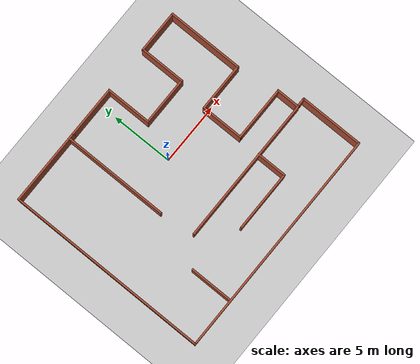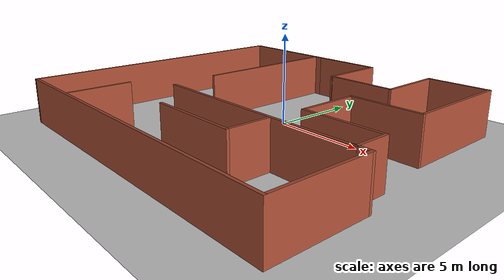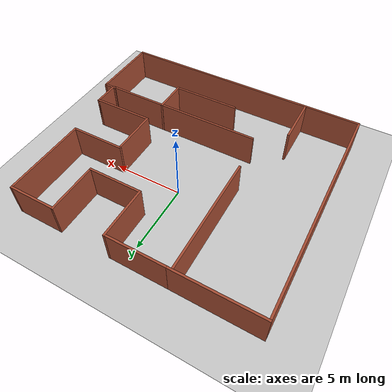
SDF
<sdf version="1.6">
 <world name="default">
  <light name="sun" type="directional">
   <pose>0 0 10 0 -0 0</pose>
   <diffuse>0.8 0.8 0.8 1</diffuse>
   <specular>0.2 0.2 0.2 1</specular>
   <attenuation>
    <range>1000</range>
    <constant>0.9</constant>
    <linear>0.01</linear>
    <quadratic>0.001</quadratic>
   </attenuation>
   <direction>-0.5 0.1 -0.9</direction>
  </light>
  <model name="ground_plane">
   <static>1</static>
   <link name="link">
    <collision name="collision">
     <geometry><plane><normal>0 0 1</normal><size>100 100</size></plane></geometry>
     <surface>
      <contact><collide_bitmask>65535</collide_bitmask></contact>
      <friction><ode><mu>100</mu><mu2>50</mu2></ode></friction>
     </surface>
    </collision>
    <visual name="visual">
     <cast_shadows>0</cast_shadows>
     <geometry><plane><normal>0 0 1</normal><size>100 100</size></plane></geometry>
     <material>
      <script><uri>file://media/materials/scripts/gazebo.material</uri><name>Gazebo/Grey</name></script>
     </material>
    </visual>
   </link>
  </model>
  <gravity>0 0 -9.8</gravity>
  <magnetic_field>6e-06 2.3e-05 -4.2e-05</magnetic_field>
  <atmosphere type="adiabatic"/>
  <physics name="default_physics" default="0" type="ode">
   <max_step_size>0.001</max_step_size>
   <real_time_factor>1</real_time_factor>
   <real_time_update_rate>1000</real_time_update_rate>
  </physics>
  <scene><ambient>0.4 0.4 0.4 1</ambient><background>0.7 0.7 0.7 1</background><shadows>1</shadows></scene>
  <spherical_coordinates>
   <surface_model>EARTH_WGS84</surface_model>
   <latitude_deg>0</latitude_deg>
   <longitude_deg>0</longitude_deg>
   <elevation>0</elevation>
   <heading_deg>0</heading_deg>
  </spherical_coordinates>
  <model name="sampleroom">
   <pose>0.148798 -1.84125 0 0 -0 0</pose>
   <link name="Wall_1">
    <collision name="Wall_1_Collision">
     <geometry><box><size>4.25 0.15 2.5</size></box></geometry>
     <pose>0 0 1.25 0 -0 0</pose>
    </collision>
    <visual name="Wall_1_Visual">
     <pose>0 0 1.25 0 -0 0</pose>
     <geometry><box><size>4.25 0.15 2.5</size></box></geometry>
     <material>
      <script><uri>file://media/materials/scripts/gazebo.material</uri><name>Gazebo/Bricks</name></script>
      <ambient>1 1 1 1</ambient>
     </material>
     <meta><layer>0</layer></meta>
    </visual>
    <pose>-1.15 8.175 0 0 -0 0</pose>
   </link>
   <link name="Wall_10">
    <collision name="Wall_10_Collision">
     <geometry><box><size>2 0.15 2.5</size></box></geometry>
     <pose>0 0 1.25 0 -0 0</pose>
    </collision>
    <visual name="Wall_10_Visual">
     <pose>0 0 1.25 0 -0 0</pose>
     <geometry><box><size>2 0.15 2.5</size></box></geometry>
     <material>
      <script><uri>file://media/materials/scripts/gazebo.material</uri><name>Gazebo/Bricks</name></script>
      <ambient>1 1 1 1</ambient>
     </material>
     <meta><layer>0</layer></meta>
    </visual>
    <pose>8.6 -2.2 0 0 -0 -1.5708</pose>
   </link>
   <link name="Wall_11">
    <collision name="Wall_11_Collision">
     <geometry><box><size>12 0.15 2.5</size></box></geometry>
     <pose>0 0 1.25 0 -0 0</pose>
    </collision>
    <visual name="Wall_11_Visual">
     <pose>0 0 1.25 0 -0 0</pose>
     <geometry><box><size>12 0.15 2.5</size></box></geometry>
     <material>
      <script><uri>file://media/materials/scripts/gazebo.material</uri><name>Gazebo/Bricks</name></script>
      <ambient>1 1 1 1</ambient>
     </material>
     <meta><layer>0</layer></meta>
    </visual>
    <pose>2.675 -3.125 0 0 -0 3.14159</pose>
   </link>
   <link name="Wall_2">
    <collision name="Wall_2_Collision">
     <geometry><box><size>3.75 0.15 2.5</size></box></geometry>
     <pose>0 0 1.25 0 -0 0</pose>
    </collision>
    <visual name="Wall_2_Visual">
     <pose>0 0 1.25 0 -0 0</pose>
     <geometry><box><size>3.75 0.15 2.5</size></box></geometry>
     <material>
      <script><uri>file://media/materials/scripts/gazebo.material</uri><name>Gazebo/Bricks</name></script>
      <ambient>1 1 1 1</ambient>
     </material>
     <meta><layer>0</layer></meta>
    </visual>
    <pose>0.9 6.375 0 0 -0 -1.5708</pose>
   </link>
   <link name="Wall_20">
    <collision name="Wall_20_Collision">
     <geometry><box><size>6.25 0.15 2.5</size></box></geometry>
     <pose>0 0 1.25 0 -0 0</pose>
    </collision>
    <visual name="Wall_20_Visual">
     <pose>0 0 1.25 0 -0 0</pose>
     <geometry><box><size>6.25 0.15 2.5</size></box></geometry>
     <material>
      <script><uri>file://media/materials/scripts/gazebo.material</uri><name>Gazebo/Bricks</name></script>
      <ambient>1 1 1 1</ambient>
     </material>
     <meta><layer>0</layer></meta>
    </visual>
    <pose>-6.25 8.175 0 0 -0 3.14159</pose>
   </link>
   <link name="Wall_21">
    <collision name="Wall_21_Collision">
     <geometry><box><size>16.5 0.15 2.5</size></box></geometry>
     <pose>0 0 1.25 0 -0 0</pose>
    </collision>
    <visual name="Wall_21_Visual">
     <pose>0 0 1.25 0 -0 0</pose>
     <geometry><box><size>16.5 0.15 2.5</size></box></geometry>
     <material>
      <script><uri>file://media/materials/scripts/gazebo.material</uri><name>Gazebo/Bricks</name></script>
      <ambient>1 1 1 1</ambient>
     </material>
     <meta><layer>0</layer></meta>
    </visual>
    <pose>-9.3 0 0 0 -0 -1.5708</pose>
   </link>
   <link name="Wall_22">
    <collision name="Wall_22_Collision">
     <geometry><box><size>18.75 0.15 2.5</size></box></geometry>
     <pose>0 0 1.25 0 -0 0</pose>
    </collision>
    <visual name="Wall_22_Visual">
     <pose>0 0 1.25 0 -0 0</pose>
     <geometry><box><size>18.75 0.15 2.5</size></box></geometry>
     <material>
      <script><uri>file://media/materials/scripts/gazebo.material</uri><name>Gazebo/Bricks</name></script>
      <ambient>1 1 1 1</ambient>
     </material>
     <meta><layer>0</layer></meta>
    </visual>
    <pose>0 -8.175 0 0 -0 0</pose>
   </link>
   <link name="Wall_23">
    <collision name="Wall_23_Collision">
     <geometry><box><size>5.25 0.15 2.5</size></box></geometry>
     <pose>0 0 1.25 0 -0 0</pose>
    </collision>
    <visual name="Wall_23_Visual">
     <pose>0 0 1.25 0 -0 0</pose>
     <geometry><box><size>5.25 0.15 2.5</size></box></geometry>
     <material>
      <script><uri>file://media/materials/scripts/gazebo.material</uri><name>Gazebo/Bricks</name></script>
      <ambient>1 1 1 1</ambient>
     </material>
     <meta><layer>0</layer></meta>
    </visual>
    <pose>9.3 -5.625 0 0 -0 1.5708</pose>
   </link>
   <link name="Wall_24">
    <collision name="Wall_24_Collision">
     <geometry><box><size>1 0.15 2.5</size></box></geometry>
     <pose>0 0 1.25 0 -0 0</pose>
    </collision>
    <visual name="Wall_24_Visual">
     <pose>0 0 1.25 0 -0 0</pose>
     <geometry><box><size>1 0.15 2.5</size></box></geometry>
     <material>
      <script><uri>file://media/materials/scripts/gazebo.material</uri><name>Gazebo/Bricks</name></script>
      <ambient>1 1 1 1</ambient>
     </material>
     <meta><layer>0</layer></meta>
    </visual>
    <pose>8.875 -3.075 0 0 -0 3.14159</pose>
   </link>
   <link name="Wall_26">
    <collision name="Wall_26_Collision">
     <geometry><box><size>8.5 0.15 2.5</size></box></geometry>
     <pose>0 0 1.25 0 -0 0</pose>
    </collision>
    <visual name="Wall_26_Visual">
     <pose>0 0 1.25 0 -0 0</pose>
     <geometry><box><size>8.5 0.15 2.5</size></box></geometry>
     <material>
      <script><uri>file://media/materials/scripts/gazebo.material</uri><name>Gazebo/Bricks</name></script>
      <ambient>1 1 1 1</ambient>
     </material>
     <meta><layer>0</layer></meta>
    </visual>
    <pose>-3.60586 3.87439 0 0 -0 -1.5708</pose>
   </link>
   <link name="Wall_28">
    <collision name="Wall_28_Collision">
     <geometry><box><size>3.5 0.15 2.5</size></box></geometry>
     <pose>0 0 1.25 0 -0 0</pose>
    </collision>
    <visual name="Wall_28_Visual">
     <pose>0 0 1.25 0 -0 0</pose>
     <geometry><box><size>3.5 0.15 2.5</size></box></geometry>
     <material>
      <script><uri>file://media/materials/scripts/gazebo.material</uri><name>Gazebo/Bricks</name></script>
      <ambient>1 1 1 1</ambient>
     </material>
     <meta><layer>0</layer></meta>
    </visual>
    <pose>-5.305 -6.37693 0 0 -0 1.5708</pose>
   </link>
   <link name="Wall_3">
    <collision name="Wall_3_Collision">
     <geometry><box><size>4 0.15 2.5</size></box></geometry>
     <pose>0 0 1.25 0 -0 0</pose>
    </collision>
    <visual name="Wall_3_Visual">
     <pose>0 0 1.25 0 -0 0</pose>
     <geometry><box><size>4 0.15 2.5</size></box></geometry>
     <material>
      <script><uri>file://media/materials/scripts/gazebo.material</uri><name>Gazebo/Bricks</name></script>
      <ambient>1 1 1 1</ambient>
     </material>
     <meta><layer>0</layer></meta>
    </visual>
    <pose>2.825 4.575 0 0 -0 0</pose>
   </link>
   <link name="Wall_30">
    <collision name="Wall_30_Collision">
     <geometry><box><size>2.5 0.15 2.5</size></box></geometry>
     <pose>0 0 1.25 0 -0 0</pose>
    </collision>
    <visual name="Wall_30_Visual">
     <pose>0 0 1.25 0 -0 0</pose>
     <geometry><box><size>2.5 0.15 2.5</size></box></geometry>
     <material>
      <script><uri>file://media/materials/scripts/gazebo.material</uri><name>Gazebo/Bricks</name></script>
      <ambient>1 1 1 1</ambient>
     </material>
     <meta><layer>0</layer></meta>
    </visual>
    <pose>4.12115 -4.29135 0 0 -0 -1.5708</pose>
   </link>
   <link name="Wall_31">
    <collision name="Wall_31_Collision">
     <geometry><box><size>5 0.15 2.5</size></box></geometry>
     <pose>0 0 1.25 0 -0 0</pose>
    </collision>
    <visual name="Wall_31_Visual">
     <pose>0 0 1.25 0 -0 0</pose>
     <geometry><box><size>5 0.15 2.5</size></box></geometry>
     <material>
      <script><uri>file://media/materials/scripts/gazebo.material</uri><name>Gazebo/Bricks</name></script>
      <ambient>1 1 1 1</ambient>
     </material>
     <meta><layer>0</layer></meta>
    </visual>
    <pose>1.69615 -5.46635 0 0 -0 3.14159</pose>
   </link>
   <link name="Wall_4">
    <collision name="Wall_4_Collision">
     <geometry><box><size>3.75 0.15 2.5</size></box></geometry>
     <pose>0 0 1.25 0 -0 0</pose>
    </collision>
    <visual name="Wall_4_Visual">
     <pose>0 0 1.25 0 -0 0</pose>
     <geometry><box><size>3.75 0.15 2.5</size></box></geometry>
     <material>
      <script><uri>file://media/materials/scripts/gazebo.material</uri><name>Gazebo/Bricks</name></script>
      <ambient>1 1 1 1</ambient>
     </material>
     <meta><layer>0</layer></meta>
    </visual>
    <pose>4.75 6.375 0 0 -0 1.5708</pose>
   </link>
   <link name="Wall_5">
    <collision name="Wall_5_Collision">
     <geometry><box><size>3.5 0.15 2.5</size></box></geometry>
     <pose>0 0 1.25 0 -0 0</pose>
    </collision>
    <visual name="Wall_5_Visual">
     <pose>0 0 1.25 0 -0 0</pose>
     <geometry><box><size>3.5 0.15 2.5</size></box></geometry>
     <material>
      <script><uri>file://media/materials/scripts/gazebo.material</uri><name>Gazebo/Bricks</name></script>
      <ambient>1 1 1 1</ambient>
     </material>
     <meta><layer>0</layer></meta>
    </visual>
    <pose>6.425 8.175 0 0 -0 0</pose>
   </link>
   <link name="Wall_6">
    <collision name="Wall_6_Collision">
     <geometry><box><size>6.25 0.15 2.5</size></box></geometry>
     <pose>0 0 1.25 0 -0 0</pose>
    </collision>
    <visual name="Wall_6_Visual">
     <pose>0 0 1.25 0 -0 0</pose>
     <geometry><box><size>6.25 0.15 2.5</size></box></geometry>
     <material>
      <script><uri>file://media/materials/scripts/gazebo.material</uri><name>Gazebo/Bricks</name></script>
      <ambient>1 1 1 1</ambient>
     </material>
     <meta><layer>0</layer></meta>
    </visual>
    <pose>8.1 5.125 0 0 -0 -1.5708</pose>
   </link>
   <link name="Wall_7">
    <collision name="Wall_7_Collision">
     <geometry><box><size>4 0.15 2.5</size></box></geometry>
     <pose>0 0 1.25 0 -0 0</pose>
    </collision>
    <visual name="Wall_7_Visual">
     <pose>0 0 1.25 0 -0 0</pose>
     <geometry><box><size>4 0.15 2.5</size></box></geometry>
     <material>
      <script><uri>file://media/materials/scripts/gazebo.material</uri><name>Gazebo/Bricks</name></script>
      <ambient>1 1 1 1</ambient>
     </material>
     <meta><layer>0</layer></meta>
    </visual>
    <pose>6.175 2.075 0 0 -0 3.14159</pose>
   </link>
   <link name="Wall_8">
    <collision name="Wall_8_Collision">
     <geometry><box><size>3.5 0.15 2.5</size></box></geometry>
     <pose>0 0 1.25 0 -0 0</pose>
    </collision>
    <visual name="Wall_8_Visual">
     <pose>0 0 1.25 0 -0 0</pose>
     <geometry><box><size>3.5 0.15 2.5</size></box></geometry>
     <material>
      <script><uri>file://media/materials/scripts/gazebo.material</uri><name>Gazebo/Bricks</name></script>
      <ambient>1 1 1 1</ambient>
     </material>
     <meta><layer>0</layer></meta>
    </visual>
    <pose>4.25 0.4 0 0 -0 -1.5708</pose>
   </link>
   <link name="Wall_9">
    <collision name="Wall_9_Collision">
     <geometry><box><size>4.5 0.15 2.5</size></box></geometry>
     <pose>0 0 1.25 0 -0 0</pose>
    </collision>
    <visual name="Wall_9_Visual">
     <pose>0 0 1.25 0 -0 0</pose>
     <geometry><box><size>4.5 0.15 2.5</size></box></geometry>
     <material>
      <script><uri>file://media/materials/scripts/gazebo.material</uri><name>Gazebo/Bricks</name></script>
      <ambient>1 1 1 1</ambient>
     </material>
     <meta><layer>0</layer></meta>
    </visual>
    <pose>6.425 -1.275 0 0 -0 0</pose>
   </link>
   <static>1</static>
  </model>
 </world>
</sdf>
